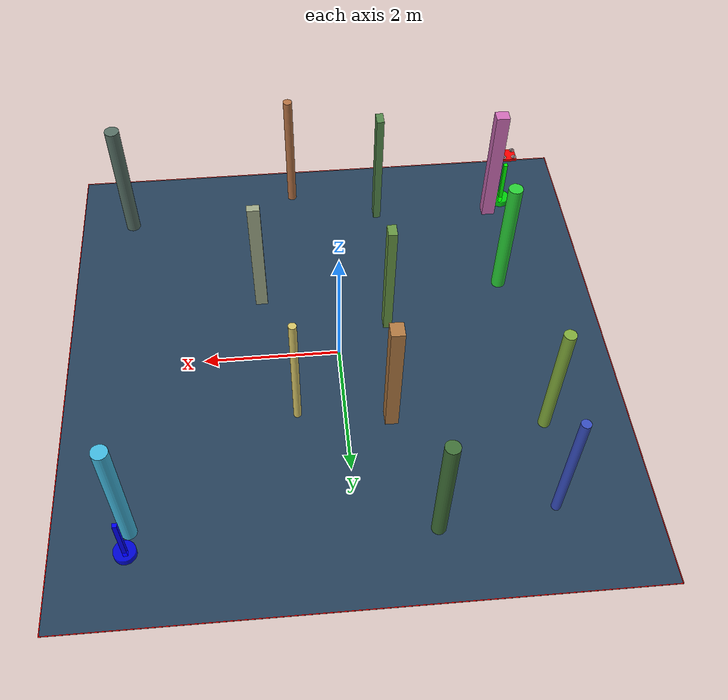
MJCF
<?xml version='1.0' encoding='utf-8'?>
<mujoco model="complex_uav_env">
  <compiler angle="degree" coordinate="local" inertiafromgeom="true" />
  <option integrator="RK4" timestep="0.01" />

  <visual>
    <headlight diffuse="0.6 0.6 0.6" ambient="0.3 0.3 0.3" />
    <rgba haze="0.15 0.25 0.35 1" />
    <global offwidth="2560" offheight="1440" />
  </visual>

  <asset>
    <texture type="skybox" builtin="gradient" rgb1="0.3 0.5 0.7" rgb2="0 0 0" width="512" height="3072" />
    <texture name="grid" type="2d" builtin="checker" rgb1="0.1 0.2 0.3" rgb2="0.2 0.3 0.4" width="512" height="512" />
    <material name="grid" texture="grid" texrepeat="1 1" />
  </asset>

  <worldbody>

    <geom name="ground" type="plane" size="4.0 4.0 0.1" material="grid" />
    <light name="light1" pos="0 0 4" dir="0 0 -1" diffuse="1 1 1" />

    <geom name="start_marker" type="cylinder" size="0.15 0.05" pos="-3.0 -3.0 0.05" rgba="0 1 0 0.8" />
    <geom name="start_pole" type="box" size="0.03 0.03 0.4" pos="-3.0 -3.0 0.4" rgba="0 1 0 1" />

    <geom name="goal_marker" type="cylinder" size="0.15 0.05" pos="3.0 3.0 0.05" rgba="0 0 1 0.8" />
    <geom name="goal_pole" type="box" size="0.03 0.03 0.4" pos="3.0 3.0 0.4" rgba="0 0 1 1" />

    <body name="chassis" pos="-3.0 -3.0 1.0">
      <joint type="free" name="root" />
      <geom type="box" size="0.12 0.12 0.02" rgba="1.0 0.0 0.0 1.0" mass="0.8" />

      <geom type="box" size="0.08 0.01 0.005" pos="0 0 0.01" rgba="0.3 0.3 0.3 1" />
      <geom type="box" size="0.01 0.08 0.005" pos="0 0 0.01" rgba="0.3 0.3 0.3 1" />

      <geom type="cylinder" size="0.015 0.02" pos="0.08 0.08 0.015" rgba="0.2 0.2 0.2 1" />
      <geom type="cylinder" size="0.015 0.02" pos="-0.08 0.08 0.015" rgba="0.2 0.2 0.2 1" />
      <geom type="cylinder" size="0.015 0.02" pos="0.08 -0.08 0.015" rgba="0.2 0.2 0.2 1" />
      <geom type="cylinder" size="0.015 0.02" pos="-0.08 -0.08 0.015" rgba="0.2 0.2 0.2 1" />

      <geom type="cylinder" size="0.04 0.002" pos="0.08 0.08 0.035" rgba="0.7 0.7 0.7 0.8" />
      <geom type="cylinder" size="0.04 0.002" pos="-0.08 0.08 0.035" rgba="0.7 0.7 0.7 0.8" />
      <geom type="cylinder" size="0.04 0.002" pos="0.08 -0.08 0.035" rgba="0.7 0.7 0.7 0.8" />
      <geom type="cylinder" size="0.04 0.002" pos="-0.08 -0.08 0.035" rgba="0.7 0.7 0.7 0.8" />

      <site name="motor1" pos="0.08 0.08 0" size="0.01" />
      <site name="motor2" pos="-0.08 0.08 0" size="0.01" />
      <site name="motor3" pos="0.08 -0.08 0" size="0.01" />
      <site name="motor4" pos="-0.08 -0.08 0" size="0.01" />
    </body>
    <geom name="test_obs_0" type="box" size="0.09397139703554196 0.11168353006872137 1.0" pos="-0.6318507951364165 1.2146154651313923 1.0" rgba="0.6990935061961984 0.4802452523106788 0.2629226307157232 1.0" />
    <geom name="test_obs_1" type="cylinder" size="0.1065775227008757 1.0" pos="2.9703579167123793 2.6957870870067993 1.0" rgba="0.2591816228154829 0.7314267389665683 0.8831880755130135 1.0" />
    <geom name="test_obs_2" type="box" size="0.05722889426700928 0.10584176189873579 1.0" pos="-0.8742450060346622 -2.884319529746919 1.0" rgba="0.3278988571144965 0.5310870536902351 0.2978027688229755 1.0" />
    <geom name="test_obs_3" type="cylinder" size="0.10564722961906195 1.0" pos="-2.6237537106051234 -1.1706028062571878 1.0" rgba="0.15924764159003812 0.8178282374886325 0.2124911103234478 1.0" />
    <geom name="test_obs_4" type="box" size="0.1037858351043689 0.09142374330613368 1.0" pos="-2.7446724755668535 -2.7852775643449803 1.0" rgba="0.8211646067190022 0.4285449766262409 0.7268476726234022 1.0" />
    <geom name="test_obs_5" type="cylinder" size="0.06484045335711713 1.0" pos="-2.6441823715805524 2.796005389785652 1.0" rgba="0.21673003958895826 0.30763300121474946 0.7588128146997882 1.0" />
    <geom name="test_obs_6" type="box" size="0.06502477395090668 0.09936243373450127 1.0" pos="-0.7772788283197035 -0.5106931608558183 1.0" rgba="0.4044681265406236 0.590786018263479 0.265260737852861 1.0" />
    <geom name="test_obs_7" type="cylinder" size="0.05521379639128051 1.0" pos="0.6789414780464504 1.0480920132744227 1.0" rgba="0.8446022139071888 0.7769457493647167 0.4059170461355973 1.0" />
    <geom name="test_obs_8" type="cylinder" size="0.08503301584924094 1.0" pos="-2.7729272235761795 1.4868223770337368 1.0" rgba="0.5112436529562852 0.6758571314502109 0.23329037140834874 1.0" />
    <geom name="test_obs_9" type="cylinder" size="0.10960171197097321 1.0" pos="3.1734558262843153 -2.9173291194662703 1.0" rgba="0.341285935049664 0.43877803218635536 0.39860922201615123 1.0" />
    <geom name="test_obs_10" type="cylinder" size="0.06906871692754159 1.0" pos="0.5084537184806048 -3.3879181560609664 1.0" rgba="0.7164143868483109 0.45357270901115043 0.2721701889226338 1.0" />
    <geom name="test_obs_11" type="box" size="0.09108742378073625 0.05930933769472201 1.0" pos="1.1095159189545845 -1.0998938953238133 1.0" rgba="0.6260485613284328 0.6658864916904371 0.5315249870456313 1.0" />
    <geom name="test_obs_12" type="cylinder" size="0.09895649493186937 1.0" pos="-1.0510522953083177 2.9756499580496465 1.0" rgba="0.2510915533852648 0.44045565512284457 0.22212845544341633 1.0" />
  <geom name="boundary_north" type="box" size="4.0 0.005 0.002" pos="0 4.0 0.002" rgba="1.0 0.0 0.0 1.0" /><geom name="boundary_south" type="box" size="4.0 0.005 0.002" pos="0 -4.0 0.002" rgba="1.0 0.0 0.0 1.0" /><geom name="boundary_east" type="box" size="0.005 4.0 0.002" pos="4.0 0 0.002" rgba="1.0 0.0 0.0 1.0" /><geom name="boundary_west" type="box" size="0.005 4.0 0.002" pos="-4.0 0 0.002" rgba="1.0 0.0 0.0 1.0" /></worldbody>

  <actuator>
    <motor name="m1" gear="0 0 1 0 0 0" site="motor1" />
    <motor name="m2" gear="0 0 1 0 0 0" site="motor2" />
    <motor name="m3" gear="0 0 1 0 0 0" site="motor3" />
    <motor name="m4" gear="0 0 1 0 0 0" site="motor4" />
  </actuator>
</mujoco>
